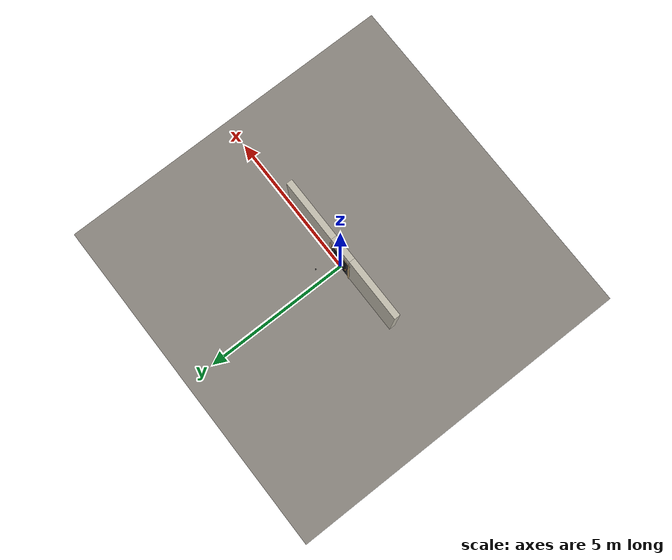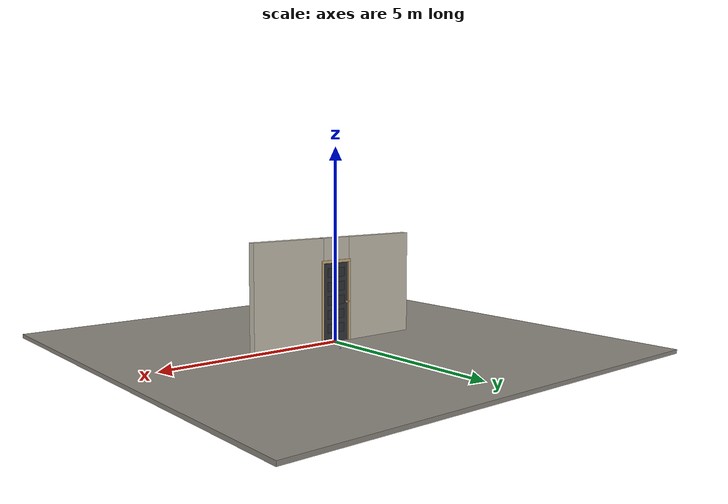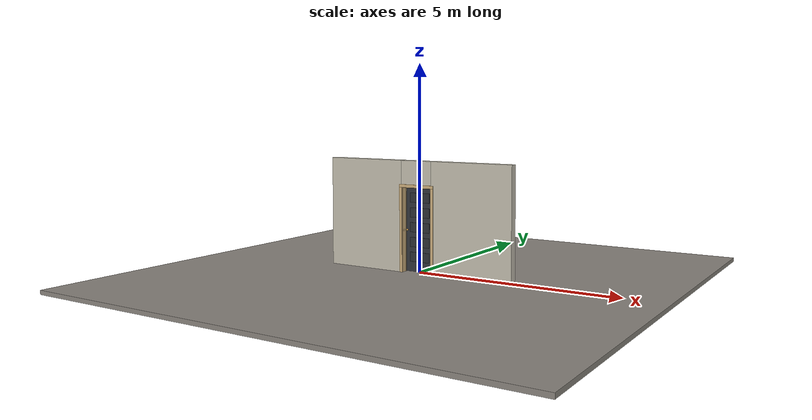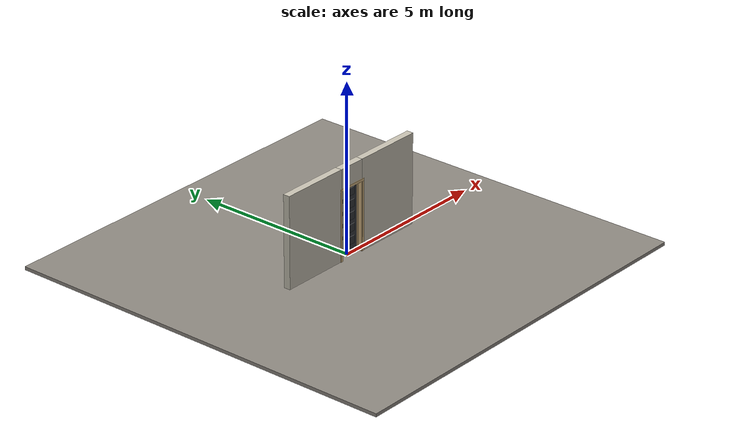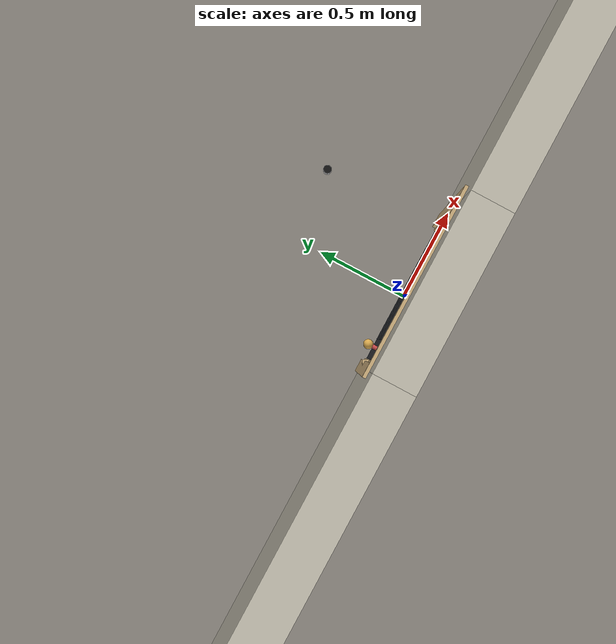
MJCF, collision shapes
<?xml version="1.0" ?>
<mujoco model="db0632_swing_single_full">
  <compiler angle="radian" meshdir="../../hardware" texturedir="../../textures" autolimits="true" inertiafromgeom="false"/>
  <option timestep="0.002" integrator="implicitfast" cone="elliptic" impratio="10" noslip_iterations="3">
    <flag multiccd="enable"/>
  </option>
  <size memory="16M"/>
  <default>
    <geom condim="4" solref="0.005 1" solimp="0.95 0.99 0.001"/>
    <joint solreflimit="0.005 1" solimplimit="0.95 0.99 0.001"/>
    <tendon solreflimit="0.005 1"/>
    <equality solref="0.002 1"/>
  </default>
  <visual>
    <headlight ambient="0.4 0.4 0.4" diffuse="0.7 0.7 0.7" specular="0.2 0.2 0.2"/>
    <quality shadowsize="4096"/>
    <map znear="0.01" zfar="60"/>
  </visual>
  <asset>
    <mesh name="hinge_96510cf394" file="hinge_96510cf394.obj"/>
    <mesh name="hinge_jamb_7fd4ca52b2" file="hinge_jamb_7fd4ca52b2.obj"/>
    <mesh name="knob_d1888f6f03" file="knob_d1888f6f03.obj"/>
    <material name="mat_floor" rgba="0.55 0.53 0.5 1" specular="0.2" shininess="0.15" reflectance="0"/>
    <material name="mat_wall" rgba="0.78 0.76 0.7 1" specular="0.2" shininess="0.1" reflectance="0"/>
    <material name="mat_leaf" rgba="0.2 0.21 0.23 1" specular="0.2" shininess="0.49" reflectance="0"/>
    <material name="mat_leaf_panel" rgba="0.184 0.193 0.212 1" specular="0.2" shininess="0.49" reflectance="0"/>
    <material name="mat_hinge" rgba="0.65 0.66 0.68 1" specular="0.74" shininess="0.5" reflectance="0.36"/>
    <material name="mat_op_brass" rgba="0.85 0.66 0.3 1" specular="0.8" shininess="0.75" reflectance="0.4"/>
    <material name="mat_trim" rgba="0.85 0.66 0.3 1" specular="0.8" shininess="0.75" reflectance="0.4"/>
    <material name="mat_bolt" rgba="0.85 0.66 0.3 1" specular="0.8" shininess="0.75" reflectance="0.4"/>
    <material name="mat_frame" rgba="0.82 0.7 0.5 1" specular="0.2" shininess="0.45" reflectance="0"/>
    <material name="mat_bumper_stop" rgba="0.08 0.08 0.08 1" specular="0.2" shininess="0.1" reflectance="0"/>
    <material name="mat_stop_base" rgba="0.9 0.9 0.92 1" specular="0.8" shininess="0.9" reflectance="0.4"/>
    <texture name="skybox" type="skybox" builtin="gradient" rgb1="0.6 0.7 0.85" rgb2="0.9 0.92 0.95" width="256" height="256"/>
  </asset>
  <worldbody>
    <light name="sun" pos="1.5 -2.5 4" dir="-0.3 0.5 -0.8" directional="true" diffuse="0.8 0.8 0.8" specular="0.3 0.3 0.3" castshadow="true"/>
    <light name="fill" pos="-1.5 2.5 3" dir="0.3 -0.5 -0.7" directional="true" diffuse="0.35 0.35 0.4" castshadow="false"/>
    <camera name="robot_view" pos="0 -2.617687 1.734312" xyaxes="1 0 0 0 0.26963 0.962964" fovy="52"/>
    <camera name="far_view" pos="0 2.466687 1.734312" xyaxes="-1 0 0 0 -0.26963 0.962964" fovy="52"/>
    <camera name="iso" pos="-1.932062 -2.210938 2.141063" xyaxes="0.741536 -0.670913 0 0.242917 0.268487 0.932151" fovy="46"/>
    <camera name="detail_handle" pos="-0.1405 -0.864 1.296" xyaxes="0.97561 0.219512 0 -0.070934 0.315262 0.94635" fovy="38"/>
    <geom name="floor" type="box" size="6 6 0.05" pos="0 0 -0.05" material="mat_floor" group="0" contype="1" conaffinity="1" friction="0.8 0.005 0.0001" density="2400"/>
    <geom name="wall_left" type="box" size="1.03325 0.1 1.35" pos="-1.46675 -0.0755 1.35" material="mat_wall" group="0" contype="1" conaffinity="1" friction="0.6 0.005 0.0001" density="800"/>
    <geom name="wall_right" type="box" size="1.04825 0.1 1.35" pos="1.45175 -0.0755 1.35" material="mat_wall" group="0" contype="1" conaffinity="1" friction="0.6 0.005 0.0001" density="800"/>
    <geom name="wall_header" type="box" size="0.4185 0.1 0.303" pos="-0.015 -0.0755 2.397" material="mat_wall" group="0" contype="1" conaffinity="1" friction="0.6 0.005 0.0001" density="800"/>
    <geom name="hinge_0_jamb" type="mesh" mesh="hinge_jamb_7fd4ca52b2" pos="0.3815 0.0245 0.259" quat="0 0 0 1" material="mat_hinge" group="1" contype="0" conaffinity="0" density="7850"/>
    <geom name="hinge_1_jamb" type="mesh" mesh="hinge_jamb_7fd4ca52b2" pos="0.3815 0.0245 1.861" quat="0 0 0 1" material="mat_hinge" group="1" contype="0" conaffinity="0" density="7850"/>
    <geom name="jamb_hinge" type="box" size="0.0095 0.1 1.0225" pos="0.394 -0.0755 1.0225" material="mat_frame" group="0" contype="1" conaffinity="1" friction="0.6 0.005 0.0001" density="400"/>
    <geom name="strike_1016_wall_n" type="box" size="0.0245 0.083825 0.0167" pos="-0.409 -0.091675 1.016" material="mat_frame" group="0" contype="1" conaffinity="1" friction="0.6 0.005 0.0001" density="400"/>
    <geom name="strike_1016_wall_p" type="box" size="0.0245 0.008 0.0167" pos="-0.409 0.01585 1.016" material="mat_frame" group="0" contype="1" conaffinity="1" friction="0.6 0.005 0.0001" density="400"/>
    <geom name="strike_1016_ramp" type="box" size="0.0245 0.01649 0.0167" pos="-0.413636 0.028673 1.016" quat="0.977148 0 0 0.212558" material="mat_frame" group="0" contype="1" conaffinity="1" friction="0.12 0.005 0.0001" density="400"/>
    <geom name="strike_1016_back" type="box" size="0.01615 0.00785 0.0167" pos="-0.41735 0 1.016" material="mat_frame" group="0" contype="1" conaffinity="1" friction="0.6 0.005 0.0001" density="400"/>
    <geom name="jamb_strike_0" type="box" size="0.0245 0.1 0.49965" pos="-0.409 -0.0755 0.49965" material="mat_frame" group="0" contype="1" conaffinity="1" friction="0.6 0.005 0.0001" density="400"/>
    <geom name="jamb_strike_1" type="box" size="0.0245 0.1 0.50615" pos="-0.409 -0.0755 1.53885" material="mat_frame" group="0" contype="1" conaffinity="1" friction="0.6 0.005 0.0001" density="400"/>
    <geom name="jamb_head" type="box" size="0.4185 0.1 0.0095" pos="-0.015 -0.0755 2.0545" material="mat_frame" group="0" contype="1" conaffinity="1" friction="0.6 0.005 0.0001" density="400"/>
    <geom name="head_stud" type="box" size="0.4185 0.1 0.015" pos="-0.015 -0.0755 2.079" material="mat_wall" group="0" contype="1" conaffinity="1" friction="0.6 0.005 0.0001" density="500"/>
    <geom name="stop_hinge" type="box" size="0.0055 0.016 1.0225" pos="0.379 -0.034 1.0225" material="mat_frame" group="0" contype="1" conaffinity="1" friction="0.6 0.005 0.0001" density="400"/>
    <geom name="stop_strike" type="box" size="0.0055 0.016 1.0225" pos="-0.379 -0.034 1.0225" material="mat_frame" group="0" contype="1" conaffinity="1" friction="0.6 0.005 0.0001" density="400"/>
    <geom name="stop_head" type="box" size="0.3845 0.016 0.0055" pos="0 -0.034 2.0395" material="mat_frame" group="0" contype="1" conaffinity="1" friction="0.6 0.005 0.0001" density="400"/>
    <geom name="casing_l_n" type="box" size="0.035 0.008 1.032" pos="-0.4335 -0.1835 1.0225" material="mat_frame" group="2" contype="0" conaffinity="0" density="400"/>
    <geom name="casing_r_n" type="box" size="0.035 0.008 1.032" pos="0.4335 -0.1835 1.0225" material="mat_frame" group="2" contype="0" conaffinity="0" density="400"/>
    <geom name="casing_h_n" type="box" size="0.4685 0.008 0.035" pos="0 -0.1835 2.094" material="mat_frame" group="2" contype="0" conaffinity="0" density="400"/>
    <geom name="casing_l_p" type="box" size="0.035 0.008 1.032" pos="-0.4335 0.0325 1.0225" material="mat_frame" group="2" contype="0" conaffinity="0" density="400"/>
    <geom name="casing_r_p" type="box" size="0.035 0.008 1.032" pos="0.4335 0.0325 1.0225" material="mat_frame" group="2" contype="0" conaffinity="0" density="400"/>
    <geom name="casing_h_p" type="box" size="0.4685 0.008 0.035" pos="0 0.0325 2.094" material="mat_frame" group="2" contype="0" conaffinity="0" density="400"/>
    <geom name="door_stop_base" type="cylinder" size="0.022 0.003" pos="0.3975 0.6722 0.003" material="mat_stop_base" group="0" contype="1" conaffinity="1" friction="0.6 0.005 0.0001" density="7850"/>
    <geom name="door_stop_post" type="cylinder" size="0.012 0.0245" pos="0.3975 0.6722 0.0305" material="mat_stop_base" group="0" contype="1" conaffinity="1" friction="0.6 0.005 0.0001" density="7850"/>
    <geom name="door_stop_bumper" type="cylinder" size="0.022 0.02" pos="0.3975 0.6722 0.075" material="mat_bumper_stop" group="0" contype="1" conaffinity="1" friction="0.6 0.005 0.0001" density="1100"/>
    <site name="approach_point" pos="0 -1.5 0" quat="1 0 0 0" size="0.05" rgba="0.2 0.9 0.2 0.5" group="4"/>
    <site name="goal_point" pos="0 1.5 0" quat="1 0 0 0" size="0.05" rgba="0.2 0.9 0.2 0.5" group="4"/>
    <site name="door_plane_center" pos="0 0 1.0225" quat="1 0 0 0" size="0.02" rgba="0.2 0.9 0.2 0.5" group="4"/>
    <body name="leaf" pos="0.3845 0 0">
      <inertial pos="-0.375326 0.000351 1.025866" mass="11.165926" quat="0.499626 0.500899 -0.499084 0.500389" diaginertia="0.567706717 3.918047899 4.483333725"/>
      <joint name="leaf_hinge" type="hinge" axis="0 0 -1" pos="-0.003 0.0245 0" limited="true" range="0 1.570796" damping="0.173726" frictionloss="15.288035" armature="0.02"/>
      <geom name="leaf_slab" type="box" size="0.381 0.0175 1.016" pos="-0.384 0 1.025" material="mat_leaf" group="0" contype="1" conaffinity="1" friction="0.35 0.005 0.0001" density="1"/>
      <geom name="leaf_panel_0_n" type="box" size="0.271 0.003 0.114688" pos="-0.384 -0.0205 0.367208" material="mat_leaf_panel" group="1" contype="0" conaffinity="0" density="1"/>
      <geom name="leaf_panel_0_p" type="box" size="0.271 0.003 0.114688" pos="-0.384 0.0205 0.367208" material="mat_leaf_panel" group="1" contype="0" conaffinity="0" density="1"/>
      <geom name="leaf_panel_1_n" type="box" size="0.271 0.003 0.114688" pos="-0.384 -0.0205 0.726584" material="mat_leaf_panel" group="1" contype="0" conaffinity="0" density="1"/>
      <geom name="leaf_panel_1_p" type="box" size="0.271 0.003 0.114688" pos="-0.384 0.0205 0.726584" material="mat_leaf_panel" group="1" contype="0" conaffinity="0" density="1"/>
      <geom name="leaf_panel_2_n" type="box" size="0.271 0.003 0.114688" pos="-0.384 -0.0205 1.08596" material="mat_leaf_panel" group="1" contype="0" conaffinity="0" density="1"/>
      <geom name="leaf_panel_2_p" type="box" size="0.271 0.003 0.114688" pos="-0.384 0.0205 1.08596" material="mat_leaf_panel" group="1" contype="0" conaffinity="0" density="1"/>
      <geom name="leaf_panel_3_n" type="box" size="0.271 0.003 0.114688" pos="-0.384 -0.0205 1.445336" material="mat_leaf_panel" group="1" contype="0" conaffinity="0" density="1"/>
      <geom name="leaf_panel_3_p" type="box" size="0.271 0.003 0.114688" pos="-0.384 0.0205 1.445336" material="mat_leaf_panel" group="1" contype="0" conaffinity="0" density="1"/>
      <geom name="leaf_panel_4_n" type="box" size="0.271 0.003 0.114688" pos="-0.384 -0.0205 1.804712" material="mat_leaf_panel" group="1" contype="0" conaffinity="0" density="1"/>
      <geom name="leaf_panel_4_p" type="box" size="0.271 0.003 0.114688" pos="-0.384 0.0205 1.804712" material="mat_leaf_panel" group="1" contype="0" conaffinity="0" density="1"/>
      <geom name="hinge_0" type="mesh" mesh="hinge_96510cf394" pos="-0.003 0.0245 0.259" quat="0 0 0 1" material="mat_hinge" group="1" contype="0" conaffinity="0" density="7850"/>
      <geom name="hinge_1" type="mesh" mesh="hinge_96510cf394" pos="-0.003 0.0245 1.861" quat="0 0 0 1" material="mat_hinge" group="1" contype="0" conaffinity="0" density="7850"/>
      <geom name="leaf_latch_bolt_faceplate" type="box" size="0.0006 0.01235 0.0267" pos="-0.7644 0 1.016" material="mat_bolt" group="1" contype="0" conaffinity="0" density="8500"/>
      <site name="leaf_edge_mid" pos="-0.765 0 1.016" quat="1 0 0 0" size="0.02" rgba="0.2 0.9 0.2 0.5" group="4"/>
      <body name="leaf_handle" pos="-0.705 0 1.016">
        <inertial pos="0 0 0" mass="1.143961" quat="0.707107 0 0 -0.707107" diaginertia="0.00031237 0.003706292 0.003706292"/>
        <joint name="leaf_handle_hinge" type="hinge" axis="0 1 0" limited="true" range="0 0.87" damping="0.143613" frictionloss="0.038" stiffness="0.5" springref="-0.5" armature="0.01"/>
        <geom name="leaf_handle_spindle" type="cylinder" size="0.006 0.0255" pos="0 0 0" quat="0.707107 -0.707107 0 0" material="mat_op_brass" group="1" contype="0" conaffinity="0" density="7850"/>
        <geom name="leaf_handle_knob_n" type="mesh" mesh="knob_d1888f6f03" pos="0 -0.0175 0" quat="0 0 -0.707107 0.707107" material="mat_op_brass" group="1" contype="0" conaffinity="0" density="3000"/>
        <geom name="leaf_handle_knob_col_n" type="sphere" size="0.0243" pos="0 -0.064 0" material="mat_op_brass" group="0" contype="1" conaffinity="1" friction="0.9 0.01 0.0001" density="3000"/>
        <geom name="leaf_handle_knob_neck_n" type="cylinder" size="0.011 0.012" pos="0 -0.0295 0" quat="0.707107 -0.707107 0 0" material="mat_op_brass" group="3" contype="1" conaffinity="1" rgba="0.8 0.3 0.3 0.25" friction="0.6 0.005 0.0001" density="3000"/>
        <geom name="leaf_handle_knob_p" type="mesh" mesh="knob_d1888f6f03" pos="0 0.0175 0" quat="0 0 0.707107 0.707107" material="mat_op_brass" group="1" contype="0" conaffinity="0" density="3000"/>
        <geom name="leaf_handle_knob_col_p" type="sphere" size="0.0243" pos="0 0.064 0" material="mat_op_brass" group="0" contype="1" conaffinity="1" friction="0.9 0.01 0.0001" density="3000"/>
        <geom name="leaf_handle_knob_neck_p" type="cylinder" size="0.011 0.012" pos="0 0.0295 0" quat="0.707107 -0.707107 0 0" material="mat_op_brass" group="3" contype="1" conaffinity="1" rgba="0.8 0.3 0.3 0.25" friction="0.6 0.005 0.0001" density="3000"/>
        <site name="leaf_handle_grip_n" pos="0 -0.064 0" quat="1 0 0 0" size="0.012" rgba="0.2 0.9 0.2 0.5" group="4"/>
        <site name="leaf_handle_grip_p" pos="0 0.064 0" quat="1 0 0 0" size="0.012" rgba="0.2 0.9 0.2 0.5" group="4"/>
      </body>
      <body name="leaf_latch_bolt" pos="-0.765 0 1.016">
        <inertial pos="0.00865 0 0" mass="0.041419" quat="0.92388 0.382683 0 0" diaginertia="0.000000798 0.000005598 0.000005598"/>
        <joint name="leaf_latch_bolt_slide" type="slide" axis="1 0 0" limited="true" range="0 0.0127" damping="2" frictionloss="0.3" stiffness="300" springref="-0.008333" armature="0.1"/>
        <geom name="leaf_latch_bolt_capsule" type="capsule" size="0.00635 0.015" pos="0.00865 0 0" quat="0.707107 0 -0.707107 0" material="mat_bolt" group="0" contype="1" conaffinity="1" friction="0.2 0.005 0.0001" density="8500"/>
      </body>
    </body>
  </worldbody>
  <tendon>
    <fixed name="leaf_latch_bolt_coupling" limited="true" range="0 10">
      <joint joint="leaf_latch_bolt_slide" coef="1"/>
      <joint joint="leaf_handle_hinge" coef="-0.015679"/>
    </fixed>
  </tendon>
  <sensor>
    <jointpos name="leaf_hinge_pos" joint="leaf_hinge"/>
    <jointvel name="leaf_hinge_vel" joint="leaf_hinge"/>
    <jointpos name="leaf_handle_hinge_pos" joint="leaf_handle_hinge"/>
    <jointvel name="leaf_handle_hinge_vel" joint="leaf_handle_hinge"/>
    <jointpos name="leaf_latch_bolt_slide_pos" joint="leaf_latch_bolt_slide"/>
    <jointvel name="leaf_latch_bolt_slide_vel" joint="leaf_latch_bolt_slide"/>
  </sensor>
</mujoco>
